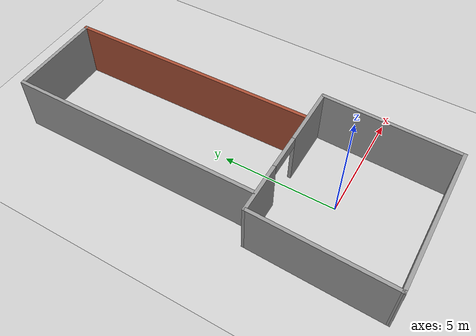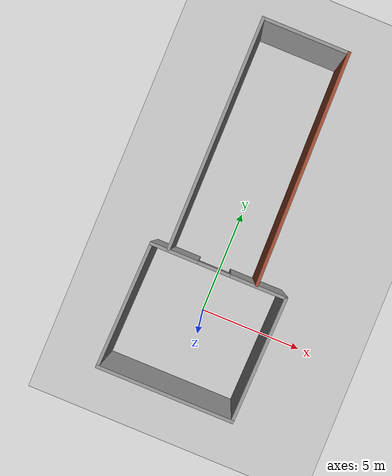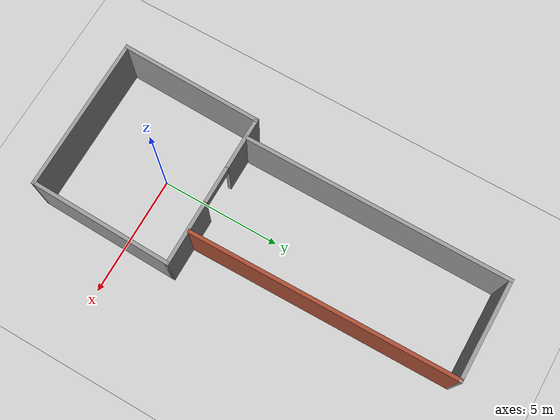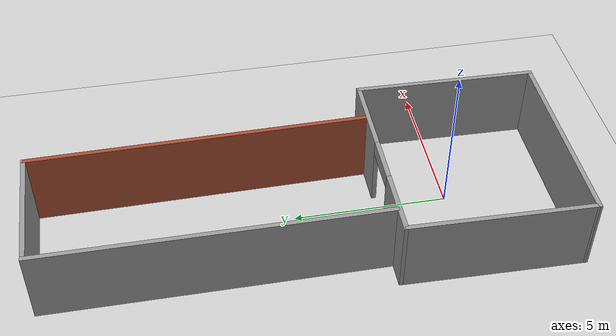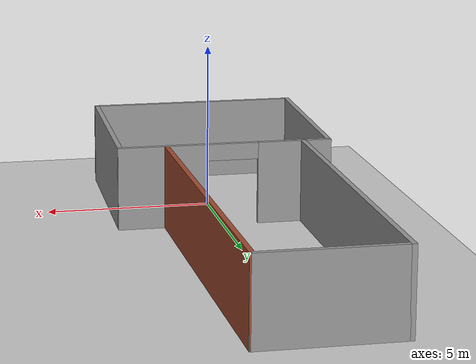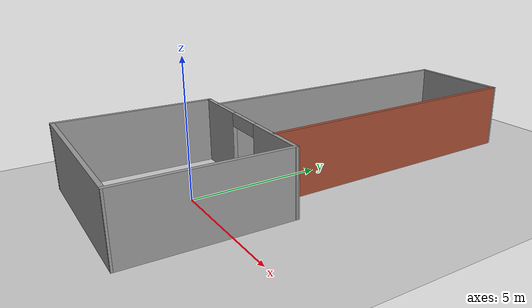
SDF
<sdf version="1.7">
 <world name="default">
  <light name="sun" type="directional">
   <pose>0 0 10 0 -0 0</pose>
   <diffuse>0.8 0.8 0.8 1</diffuse>
   <specular>0.2 0.2 0.2 1</specular>
   <attenuation>
    <range>1000</range>
    <constant>0.9</constant>
    <linear>0.01</linear>
    <quadratic>0.001</quadratic>
   </attenuation>
   <direction>-0.5 0.1 -0.9</direction>
   <spot><inner_angle>0</inner_angle><outer_angle>0</outer_angle><falloff>0</falloff></spot>
  </light>
  <model name="ground_plane">
   <static>1</static>
   <link name="link">
    <collision name="collision">
     <geometry><plane><normal>0 0 1</normal><size>100 100</size></plane></geometry>
     <surface><friction><ode><mu>100</mu><mu2>50</mu2></ode></friction></surface>
    </collision>
    <visual name="visual">
     <cast_shadows>0</cast_shadows>
     <geometry><plane><normal>0 0 1</normal><size>100 100</size></plane></geometry>
     <material>
      <script><uri>file://media/materials/scripts/gazebo.material</uri><name>Gazebo/Grey</name></script>
     </material>
    </visual>
   </link>
  </model>
  <gravity>0 0 -9.8</gravity>
  <magnetic_field>6e-06 2.3e-05 -4.2e-05</magnetic_field>
  <atmosphere type="adiabatic"/>
  <physics type="ode">
   <max_step_size>0.001</max_step_size>
   <real_time_factor>1</real_time_factor>
   <real_time_update_rate>1000</real_time_update_rate>
  </physics>
  <scene><ambient>0.4 0.4 0.4 1</ambient><background>0.7 0.7 0.7 1</background><shadows>1</shadows></scene>
  <spherical_coordinates>
   <surface_model>EARTH_WGS84</surface_model>
   <latitude_deg>0</latitude_deg>
   <longitude_deg>0</longitude_deg>
   <elevation>0</elevation>
   <heading_deg>0</heading_deg>
  </spherical_coordinates>
  <model name="prova_1">
   <pose>-0.147199 4.82127 0 0 -0 0</pose>
   <link name="Wall_0">
    <collision name="Wall_0_Collision">
     <geometry><box><size>6.5 0.15 2.5</size></box></geometry>
     <pose>0 0 1.25 0 -0 0</pose>
    </collision>
    <visual name="Wall_0_Visual">
     <pose>0 0 1.25 0 -0 0</pose>
     <geometry><box><size>6.5 0.15 2.5</size></box></geometry>
     <material>
      <script><uri>file://media/materials/scripts/gazebo.material</uri><name>Gazebo/Grey</name></script>
      <ambient>1 1 1 1</ambient>
     </material>
     <meta><layer>0</layer></meta>
    </visual>
    <pose>-0.070182 -8.39343 0 0 -0 0</pose>
   </link>
   <link name="Wall_13">
    <collision name="Wall_13_Collision">
     <geometry><box><size>11 0.15 2.5</size></box></geometry>
     <pose>0 0 1.25 0 -0 0</pose>
    </collision>
    <visual name="Wall_13_Visual">
     <pose>0 0 1.25 0 -0 0</pose>
     <geometry><box><size>11 0.15 2.5</size></box></geometry>
     <material>
      <script><uri>file://media/materials/scripts/gazebo.material</uri><name>Gazebo/Grey</name></script>
      <ambient>1 1 1 1</ambient>
     </material>
     <meta><layer>0</layer></meta>
    </visual>
    <pose>-2.31597 2.9695 0 0 -0 1.5708</pose>
   </link>
   <link name="Wall_20">
    <collision name="Wall_20_Collision">
     <geometry><box><size>11 0.15 2.5</size></box></geometry>
     <pose>0 0 1.25 0 -0 0</pose>
    </collision>
    <visual name="Wall_20_Visual">
     <pose>0 0 1.25 0 -0 0</pose>
     <geometry><box><size>11 0.15 2.5</size></box></geometry>
     <material>
      <script><uri>file://media/materials/scripts/gazebo.material</uri><name>Gazebo/Bricks</name></script>
      <ambient>1 1 1 1</ambient>
     </material>
     <meta><layer>0</layer></meta>
    </visual>
    <pose>1.78732 2.96973 0 0 -0 1.5822</pose>
   </link>
   <link name="Wall_26">
    <collision name="Wall_26_Collision">
     <geometry><box><size>4.19142 0.15 2.5</size></box></geometry>
     <pose>0 0 1.25 0 -0 0</pose>
    </collision>
    <visual name="Wall_26_Visual">
     <pose>0 0 1.25 0 -0 0</pose>
     <geometry><box><size>4.19142 0.15 2.5</size></box></geometry>
     <material>
      <script><uri>file://media/materials/scripts/gazebo.material</uri><name>Gazebo/Grey</name></script>
      <ambient>1 1 1 1</ambient>
     </material>
     <meta><layer>0</layer></meta>
    </visual>
    <pose>-0.295264 8.39461 0 0 -0 5.7e-05</pose>
   </link>
   <link name="Wall_3">
    <collision name="Wall_3_Collision">
     <geometry><box><size>5.95491 0.15 2.5</size></box></geometry>
     <pose>0 0 1.25 0 -0 0</pose>
    </collision>
    <visual name="Wall_3_Visual">
     <pose>0 0 1.25 0 -0 0</pose>
     <geometry><box><size>5.95491 0.15 2.5</size></box></geometry>
     <material>
      <script><uri>file://media/materials/scripts/gazebo.material</uri><name>Gazebo/Grey</name></script>
      <ambient>1 1 1 1</ambient>
     </material>
     <meta><layer>0</layer></meta>
    </visual>
    <pose>3.175 -5.49183 0 0 -0 1.54661</pose>
   </link>
   <link name="Wall_4">
    <pose>0.070182 -2.54343 0 0 -0 3.14159</pose>
    <visual name="Wall_4_Visual_0">
     <pose>-1.89879 0 1.25 0 -0 0</pose>
     <geometry><box><size>2.70243 0.15 2.5</size></box></geometry>
     <material>
      <script><uri>file://media/materials/scripts/gazebo.material</uri><name>Gazebo/Grey</name></script>
      <ambient>1 1 1 1</ambient>
     </material>
     <meta><layer>0</layer></meta>
    </visual>
    <collision name="Wall_4_Collision_0">
     <geometry><box><size>2.70243 0.15 2.5</size></box></geometry>
     <pose>-1.89879 0 1.25 0 -0 0</pose>
    </collision>
    <visual name="Wall_4_Visual_1">
     <pose>2.12321 0 1.25 0 -0 0</pose>
     <geometry><box><size>2.25357 0.15 2.5</size></box></geometry>
     <material>
      <script><uri>file://media/materials/scripts/gazebo.material</uri><name>Gazebo/Grey</name></script>
      <ambient>1 1 1 1</ambient>
     </material>
     <meta><layer>0</layer></meta>
    </visual>
    <collision name="Wall_4_Collision_1">
     <geometry><box><size>2.25357 0.15 2.5</size></box></geometry>
     <pose>2.12321 0 1.25 0 -0 0</pose>
    </collision>
    <visual name="Wall_4_Visual_2">
     <pose>0.224428 0 2.25 0 -0 0</pose>
     <geometry><box><size>1.544 0.15 0.5</size></box></geometry>
     <material>
      <script><uri>file://media/materials/scripts/gazebo.material</uri><name>Gazebo/Grey</name></script>
      <ambient>1 1 1 1</ambient>
     </material>
     <meta><layer>0</layer></meta>
    </visual>
    <collision name="Wall_4_Collision_2">
     <geometry><box><size>1.544 0.15 0.5</size></box></geometry>
     <pose>0.224428 0 2.25 0 -0 0</pose>
    </collision>
   </link>
   <link name="Wall_5">
    <collision name="Wall_5_Collision">
     <geometry><box><size>5.95491 0.15 2.5</size></box></geometry>
     <pose>0 0 1.25 0 -0 0</pose>
    </collision>
    <visual name="Wall_5_Visual">
     <pose>0 0 1.25 0 -0 0</pose>
     <geometry><box><size>5.95491 0.15 2.5</size></box></geometry>
     <material>
      <script><uri>file://media/materials/scripts/gazebo.material</uri><name>Gazebo/Grey</name></script>
      <ambient>1 1 1 1</ambient>
     </material>
     <meta><layer>0</layer></meta>
    </visual>
    <pose>-3.175 -5.49183 0 0 -0 -1.59498</pose>
   </link>
   <static>1</static>
  </model>
 </world>
</sdf>
